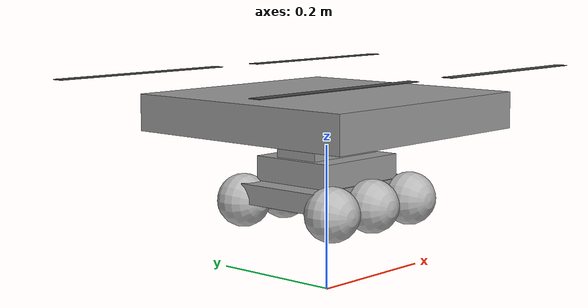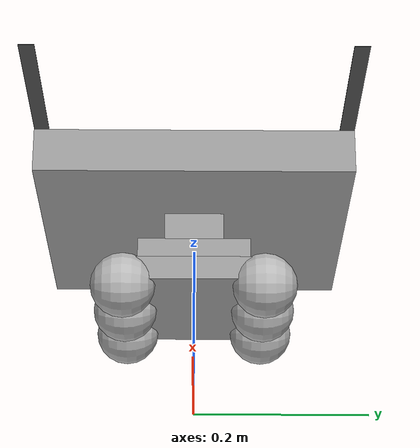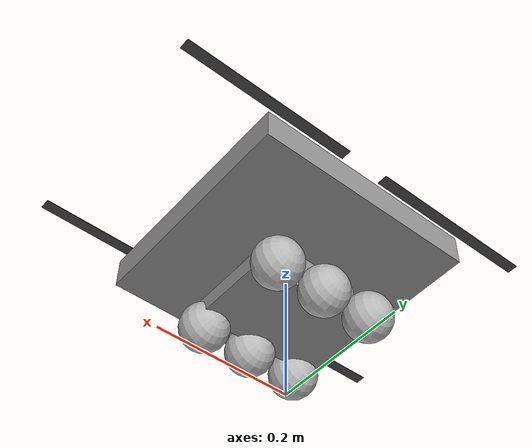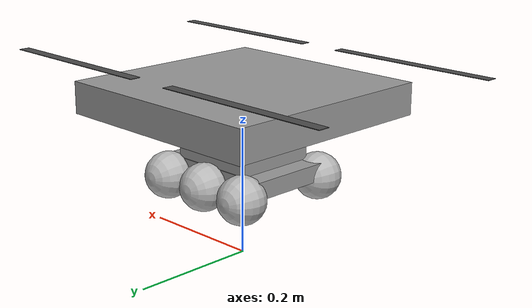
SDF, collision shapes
<?xml version="1.0" encoding="UTF-8"?>
<sdf version='1.9'>
  <model name='x500_base_custom'>

    <pose>0 0 .24 0 0 0</pose>
    <self_collide>false</self_collide>
    <static>false</static>

    <link name="base_link">
      <inertial>
        <mass>2.0</mass>
        <inertia>
          <ixx>0.02166666666666667</ixx>
          <ixy>0</ixy>
          <ixz>0</ixz>
          <iyy>0.02166666666666667</iyy>
          <iyz>0</iyz>
          <izz>0.04000000000000001</izz>
        </inertia>
      </inertial>
      <gravity>true</gravity>
      <velocity_decay />
      <!-- assembly STL visual-->
      <visual name="base_link_visual">
        <!-- edit here - stl position -->
        <pose> -0.3 0.3 -0.15 0 0 -1.570796327</pose>
        <geometry>
          <mesh>
            <scale>1 1 1</scale>
            <!-- edit here - add model stl/dae file -->
            <uri>model://x500_base_custom/meshes/Holybro_X500_V4.STL</uri>
          </mesh>
        </geometry>
        <material>
          <script>
            <uri>file://media/materials/scripts/gazebo.material</uri>
            <name>Gazebo/Grey</name>
          </script>
        </material>
      </visual>
      <!-- motor visual-->
      <visual name="5010_motor_base_0">
        <pose>0.174 0.174 .032 0 0 -.45</pose>
        <geometry>
          <mesh>
            <scale>1 1 1</scale>
            <uri>model://x500_base_custom/meshes/5010Base.dae</uri>
          </mesh>
        </geometry>
      </visual>
      <visual name="5010_motor_base_1">
        <pose>-0.174 0.174 .032 0 0 -.45</pose>
        <geometry>
          <mesh>
            <scale>1 1 1</scale>
            <uri>model://x500_base_custom/meshes/5010Base.dae</uri>
          </mesh>
        </geometry>
      </visual>
      <visual name="5010_motor_base_2">
        <pose>0.174 -0.174 .032 0 0 -.45</pose>
        <geometry>
          <mesh>
            <scale>1 1 1</scale>
            <uri>model://x500_base_custom/meshes/5010Base.dae</uri>
          </mesh>
        </geometry>
      </visual>
      <visual name="5010_motor_base_3">
        <pose>-0.174 -0.174 .032 0 0 -.45</pose>
        <geometry>
          <mesh>
            <scale>1 1 1</scale>
            <uri>model://x500_base_custom/meshes/5010Base.dae</uri>
          </mesh>
        </geometry>
      </visual>
      <!-- X500 senser parts visual-->
      <visual name="NXP_FMUK66_FRONT">
        <pose>0.047 .001 .043 1 0 1.57</pose>
        <cast_shadows>false</cast_shadows>
        <geometry>
          <plane>
            <normal>0 0 1</normal>
            <size>.013 .007</size>
          </plane>
        </geometry>
        <material>
          <diffuse>1.0 1.0 1.0</diffuse>
          <specular>1.0 1.0 1.0</specular>
          <pbr>
            <metal>
              <albedo_map>model://x500_base_custom/materials/textures/nxp.png</albedo_map>
            </metal>
          </pbr>
        </material>
      </visual>
      <visual name="NXP_FMUK66_TOP">
        <pose>-0.023 0 .0515 0 0 -1.57</pose>
        <cast_shadows>false</cast_shadows>
        <geometry>
          <plane>
            <normal>0 0 1</normal>
            <size>.013 .007</size>
          </plane>
        </geometry>
        <material>
          <diffuse>1.0 1.0 1.0</diffuse>
          <specular>1.0 1.0 1.0</specular>
          <pbr>
            <metal>
              <albedo_map>model://x500_base_custom/materials/textures/nxp.png</albedo_map>
            </metal>
          </pbr>
        </material>
      </visual>
      <visual name="RDDRONE_FMUK66_TOP">
        <pose>-.03 0 .0515 0 0 -1.57</pose>
        <cast_shadows>false</cast_shadows>
        <geometry>
          <plane>
            <normal>0 0 1</normal>
            <size>.032 .0034</size>
          </plane>
        </geometry>
        <material>
          <diffuse>1.0 1.0 1.0</diffuse>
          <specular>1.0 1.0 1.0</specular>
          <pbr>
            <metal>
              <albedo_map>model://x500_base_custom/materials/textures/rd.png</albedo_map>
            </metal>
          </pbr>
        </material>
      </visual>
      <!-- X500 top box -->
      <collision name="base_link_collision_0">
        <pose>0 0 .007 0 0 0</pose>
        <geometry>
          <box>
            <size>0.35355339059327373 0.35355339059327373 0.05</size>
          </box>
        </geometry>
        <surface>
          <contact>
            <ode>
              <min_depth>0.001</min_depth>
              <max_vel>0</max_vel>
            </ode>
          </contact>
          <friction>
            <ode />
          </friction>
        </surface>
      </collision>
      <!-- electric box-->
      <collision name="base_link_collision_1">
          <pose>0 0 -0.03485 0 0 0</pose>
          <geometry>
            <box>
              <size>0.125 0.068 0.035</size>
            </box>
          </geometry>
          <surface>
            <contact>
              <ode>
                <min_depth>0.001</min_depth>
                <max_vel>0</max_vel>
              </ode>
            </contact>
            <friction>
              <ode />
            </friction>
          </surface>
        </collision>
      <!-- battery box-->
      <collision name="base_link_collision_2">
        <pose>0 0 -0.06920 0 0 0</pose>
        <geometry>
          <box>
            <size>0.14 0.129 0.0337</size>
          </box>
        </geometry>
        <surface>
          <contact>
            <ode>
              <min_depth>0.001</min_depth>
              <max_vel>0</max_vel>
            </ode>
          </contact>
          <friction>
            <ode />
          </friction>
        </surface>
      </collision>
      <!-- whell base -->
      <collision name="base_link_collision_3">
        <pose>0 0 -0.1002 0 0 0</pose>
        <geometry>
          <box>
            <size>0.2 0.13 0.027</size>
          </box>
        </geometry>
        <surface>
          <contact>
            <ode>
              <min_depth>0.001</min_depth>
              <max_vel>0</max_vel>
            </ode>
          </contact>
          <friction>
            <ode />
          </friction>
        </surface>
      </collision>

      <!-- Standart Px4 Sensors-->
      <sensor name="air_pressure_sensor" type="air_pressure">
        <gz_frame_id>base_link</gz_frame_id>
        <always_on>1</always_on>
        <update_rate>50</update_rate>
        <air_pressure>
          <!-- Noise modeled after BMP390 -->
          <pressure>
            <noise type="gaussian">
              <mean>0</mean>
              <stddev>3</stddev>
            </noise>
          </pressure>
        </air_pressure>
      </sensor>
      <sensor name="magnetometer_sensor" type="magnetometer">
        <gz_frame_id>base_link</gz_frame_id>
        <always_on>1</always_on>
        <update_rate>100</update_rate>
        <magnetometer>
          <!-- TODO: update to fix units and coordinate system when we move past Harmonic -->
          <!-- See https://github.com/gazebosim/gz-sim/pull/2460 -->
          <!-- 3mgauss RMS: NOTE: noise is in tesla but sensor reports data in gauss -->
          <!-- Noise modeled after IIS2MDC -->
          <x>
            <noise type="gaussian">
              <stddev>0.0001</stddev>
            </noise>
          </x>
          <y>
            <noise type="gaussian">
              <stddev>0.0001</stddev>
            </noise>
          </y>
          <z>
            <noise type="gaussian">
              <stddev>0.0001</stddev>
            </noise>
          </z>
        </magnetometer>
      </sensor>
      <sensor name="imu_sensor" type="imu">
        <gz_frame_id>base_link</gz_frame_id>
        <always_on>1</always_on>
        <update_rate>250</update_rate>
        <imu>
          <angular_velocity>
            <!-- Noise modeled after IIM42653 -->
            <!-- 0.05 deg/s converted to rad/s -->
            <x>
              <noise type="gaussian">
                <mean>0.0</mean>
                <stddev>0.0008726646</stddev>
              </noise>
            </x>
            <y>
              <noise type="gaussian">
                <mean>0.0</mean>
                <stddev>0.0008726646</stddev>
              </noise>
            </y>
            <z>
              <noise type="gaussian">
                <mean>0.0</mean>
                <stddev>0.0008726646</stddev>
              </noise>
            </z>
          </angular_velocity>
          <linear_acceleration>
            <!-- Noise modeled after IIM42653 -->
            <!-- X & Y axis: 0.65 mg-rms converted to m/ss -->
            <x>
              <noise type="gaussian">
                <mean>0.0</mean>
                <stddev>0.00637</stddev>
              </noise>
            </x>
            <y>
              <noise type="gaussian">
                <mean>0.0</mean>
                <stddev>0.00637</stddev>
              </noise>
            </y>
            <!-- Z axis: 0.70 mg-rms converted to m/ss-->
            <z>
              <noise type="gaussian">
                <mean>0.0</mean>
                <stddev>0.00686</stddev>
              </noise>
            </z>
          </linear_acceleration>
        </imu>
      </sensor>
      <sensor name="navsat_sensor" type="navsat">
        <gz_frame_id>base_link</gz_frame_id>
        <always_on>1</always_on>
        <update_rate>30</update_rate>
      </sensor>
    </link>

    <!-- Px4 Rotors-->

    <link name="rotor_0">
      <gravity>true</gravity>
      <self_collide>false</self_collide>
      <velocity_decay />
      <pose>0.174 -0.174 0.06 0 0 0</pose>
      <inertial>
        <mass>0.016076923076923075</mass>
        <inertia>
          <ixx>3.8464910483993325e-07</ixx>
          <iyy>2.6115851691700804e-05</iyy>
          <izz>2.649858234714004e-05</izz>
        </inertia>
      </inertial>
      <visual name="rotor_0_visual">
        <pose>-0.022 -0.14638461538461536 -0.016 0 0 0</pose>
        <geometry>
          <mesh>
            <scale>0.8461538461538461 0.8461538461538461 0.8461538461538461</scale>
            <uri>model://x500_base_custom/meshes/1345_prop_ccw.stl</uri>
          </mesh>
        </geometry>
        <material>
          <script>
            <name>Gazebo/DarkGrey</name>
            <uri>file://media/materials/scripts/gazebo.material</uri>
          </script>
        </material>
      </visual>
      <visual name="rotor_0_visual_motor_bell">
        <pose>0 0 -.032 0 0 0</pose>
        <geometry>
          <mesh>
            <scale>1 1 1</scale>
            <uri>model://x500_base_custom/meshes/5010Bell.dae</uri>
          </mesh>
        </geometry>
      </visual>
      <collision name="rotor_0_collision">
        <pose>0 0 0 0 0 0 </pose>
        <geometry>
          <box>
            <size>0.2792307692307692 0.016923076923076923 0.0008461538461538462</size>
          </box>
        </geometry>
        <surface>
          <contact>
            <ode>
              <min_depth>0.001</min_depth>
              <max_vel>0</max_vel>
            </ode>
          </contact>
          <friction>
            <ode />
          </friction>
        </surface>
      </collision>
    </link>
    <joint name="rotor_0_joint" type="revolute">
      <parent>base_link</parent>
      <child>rotor_0</child>
      <axis>
        <xyz>0 0 1</xyz>
        <limit>
          <lower>-1e+16</lower>
          <upper>1e+16</upper>
        </limit>
        <dynamics>
          <spring_reference>0</spring_reference>
          <spring_stiffness>0</spring_stiffness>
        </dynamics>
      </axis>
    </joint>
    <link name="rotor_1">
      <gravity>true</gravity>
      <self_collide>false</self_collide>
      <velocity_decay />
      <pose>-0.174 0.174 0.06 0 0 0</pose>
      <inertial>
        <mass>0.016076923076923075</mass>
        <inertia>
          <ixx>3.8464910483993325e-07</ixx>
          <iyy>2.6115851691700804e-05</iyy>
          <izz>2.649858234714004e-05</izz>
        </inertia>
      </inertial>
      <visual name="rotor_1_visual">
        <pose>-0.022 -0.14638461538461536 -0.016 0 0 0</pose>
        <geometry>
          <mesh>
            <scale>0.8461538461538461 0.8461538461538461 0.8461538461538461</scale>
            <uri>model://x500_base_custom/meshes/1345_prop_ccw.stl</uri>
          </mesh>
        </geometry>
        <material>
          <script>
            <name>Gazebo/DarkGrey</name>
            <uri>file://media/materials/scripts/gazebo.material</uri>
          </script>
        </material>
      </visual>
      <visual name="rotor_1_visual_motor_top">
        <pose>0 0 -.032 0 0 0</pose>
        <geometry>
          <mesh>
            <scale>1 1 1</scale>
            <uri>model://x500_base_custom/meshes/5010Bell.dae</uri>
          </mesh>
        </geometry>
      </visual>
      <collision name="rotor_1_collision">
        <pose>0 0 0 0 0 0 </pose>
        <geometry>
          <box>
            <size>0.2792307692307692 0.016923076923076923 0.0008461538461538462</size>
          </box>
        </geometry>
        <surface>
          <contact>
            <ode>
              <min_depth>0.001</min_depth>
              <max_vel>0</max_vel>
            </ode>
          </contact>
          <friction>
            <ode />
          </friction>
        </surface>
      </collision>
    </link>
    <joint name="rotor_1_joint" type="revolute">
      <parent>base_link</parent>
      <child>rotor_1</child>
      <axis>
        <xyz>0 0 1</xyz>
        <limit>
          <lower>-1e+16</lower>
          <upper>1e+16</upper>
        </limit>
        <dynamics>
          <spring_reference>0</spring_reference>
          <spring_stiffness>0</spring_stiffness>
        </dynamics>
      </axis>
    </joint>
    <link name="rotor_2">
      <gravity>true</gravity>
      <self_collide>false</self_collide>
      <velocity_decay />
      <pose>0.174 0.174 0.06 0 0 0</pose>
      <inertial>
        <mass>0.016076923076923075</mass>
        <inertia>
          <ixx>3.8464910483993325e-07</ixx>
          <iyy>2.6115851691700804e-05</iyy>
          <izz>2.649858234714004e-05</izz>
        </inertia>
      </inertial>
      <visual name="rotor_2_visual">
        <pose>-0.022 -0.14638461538461536 -0.016 0 0 0</pose>
        <geometry>
          <mesh>
            <scale>0.8461538461538461 0.8461538461538461 0.8461538461538461</scale>
            <uri>model://x500_base_custom/meshes/1345_prop_cw.stl</uri>
          </mesh>
        </geometry>
        <material>
          <script>
            <name>Gazebo/DarkGrey</name>
            <uri>file://media/materials/scripts/gazebo.material</uri>
          </script>
        </material>
      </visual>
      <visual name="rotor_2_visual_motor_top">
        <pose>0 0 -.032 0 0 0</pose>
        <geometry>
          <mesh>
            <scale>1 1 1</scale>
            <uri>model://x500_base_custom/meshes/5010Bell.dae</uri>
          </mesh>
        </geometry>
      </visual>
      <collision name="rotor_2_collision">
        <pose>0 0 0 0 0 0 </pose>
        <geometry>
          <box>
            <size>0.2792307692307692 0.016923076923076923 0.0008461538461538462</size>
          </box>
        </geometry>
        <surface>
          <contact>
            <ode>
              <min_depth>0.001</min_depth>
              <max_vel>0</max_vel>
            </ode>
          </contact>
          <friction>
            <ode />
          </friction>
        </surface>
      </collision>
    </link>
    <joint name="rotor_2_joint" type="revolute">
      <parent>base_link</parent>
      <child>rotor_2</child>
      <axis>
        <xyz>0 0 1</xyz>
        <limit>
          <lower>-1e+16</lower>
          <upper>1e+16</upper>
        </limit>
        <dynamics>
          <spring_reference>0</spring_reference>
          <spring_stiffness>0</spring_stiffness>
        </dynamics>
      </axis>
    </joint>
    <link name="rotor_3">
      <gravity>true</gravity>
      <self_collide>false</self_collide>
      <velocity_decay />
      <pose>-0.174 -0.174 0.06 0 0 0</pose>
      <inertial>
        <mass>0.016076923076923075</mass>
        <inertia>
          <ixx>3.8464910483993325e-07</ixx>
          <iyy>2.6115851691700804e-05</iyy>
          <izz>2.649858234714004e-05</izz>
        </inertia>
      </inertial>
      <visual name="rotor_3_visual">
        <pose>-0.022 -0.14638461538461536 -0.016 0 0 0</pose>
        <geometry>
          <mesh>
            <scale>0.8461538461538461 0.8461538461538461 0.8461538461538461</scale>
            <uri>model://x500_base_custom/meshes/1345_prop_cw.stl</uri>
          </mesh>
        </geometry>
        <material>
          <script>
            <name>Gazebo/DarkGrey</name>
            <uri>file://media/materials/scripts/gazebo.material</uri>
          </script>
        </material>
      </visual>
      <visual name="rotor_3_visual_motor_top">
        <pose>0 0 -.032 0 0 0</pose>
        <geometry>
          <mesh>
            <scale>1 1 1</scale>
            <uri>model://x500_base_custom/meshes/5010Bell.dae</uri>
          </mesh>
        </geometry>
      </visual>
      <collision name="rotor_3_collision">
        <pose>0 0 0 0 0 0 </pose>
        <geometry>
          <box>
            <size>0.2792307692307692 0.016923076923076923 0.0008461538461538462</size>
          </box>
        </geometry>
        <surface>
          <contact>
            <ode>
              <min_depth>0.001</min_depth>
              <max_vel>0</max_vel>
            </ode>
          </contact>
          <friction>
            <ode />
          </friction>
        </surface>
      </collision>
    </link>
    <joint name="rotor_3_joint" type="revolute">
      <parent>base_link</parent>
      <child>rotor_3</child>
      <axis>
        <xyz>0 0 1</xyz>
        <limit>
          <lower>-1e+16</lower>
          <upper>1e+16</upper>
        </limit>
        <dynamics>
          <spring_reference>0</spring_reference>
          <spring_stiffness>0</spring_stiffness>
        </dynamics>
      </axis>
    </joint>

    <!-- whell link&joint-->
    <link name="wheel_L_front_link">
      <pose>0.08 0.08 -0.1137 1.570796327 0 0</pose>
      <inertial>
        <mass>0.01</mass>
        <inertia>
          <ixx>0.000001</ixx><ixy>0</ixy><ixz>0</ixz>
          <iyy>0.000001</iyy><iyz>0</iyz><izz>0.000001</izz>
        </inertia>
      </inertial>
      <collision name="collision">
        <geometry><sphere><radius>0.036615</radius></sphere></geometry>
        <surface>
          <friction><ode><mu>1000000000000.0</mu><mu2>1000000000000.0</mu2><fdir1>1 0 0</fdir1></ode></friction>
          <contact><ode><kp>1000000000000.0</kp><kd>10.0</kd><min_depth>0.001</min_depth><max_vel>0.1</max_vel></ode></contact>
        </surface>
      </collision>
    </link>
    <joint name="wheel_L_front_joint" type="revolute">
      <parent>base_link</parent>
      <child>wheel_L_front_link</child>
      <axis>
        <xyz>0 0 -1</xyz>
        <limit>
          <lower>-1e16</lower>
          <upper>1e16</upper>
        </limit>
      </axis>
      <gz_ros2_control>
        <joint_name>wheel_L_front_joint</joint_name>
        <command_interface name="velocity"/>
        <state_interface name="position"/>
        <state_interface name="velocity"/>
      </gz_ros2_control>
    </joint>
    <link name="wheel_L_mid_link">
      <pose>0 0.08 -0.1137 1.570796327 0 0</pose>
      <inertial>
        <mass>0.01</mass>
        <inertia><ixx>0.000001</ixx><iyy>0.000001</iyy><izz>0.000001</izz></inertia>
      </inertial>
      <collision name="collision">
        <geometry><sphere><radius>0.036615</radius></sphere></geometry>
        <surface>
          <friction><ode><mu>1000000000000.0</mu><mu2>1000000000000.0</mu2></ode></friction>
          <contact><ode><kp>1000000000000.0</kp><kd>10.0</kd></ode></contact>
        </surface>
      </collision>
    </link>
    <joint name="wheel_L_mid_joint" type="revolute">
      <parent>base_link</parent>
      <child>wheel_L_mid_link</child>
      <axis>
        <xyz>0 0 -1</xyz>
        <limit>
          <lower>-1e16</lower>
          <upper>1e16</upper>
        </limit>
      </axis>
      <gz_ros2_control>
        <joint_name>wheel_L_mid_joint</joint_name>
        <command_interface name="velocity"/>
        <state_interface name="position"/>
        <state_interface name="velocity"/>
      </gz_ros2_control>
    </joint>
    <link name="wheel_L_rear_link">
      <pose>-0.08 0.08 -0.1137 1.570796327 0 0</pose>
      <inertial>
        <mass>0.01</mass>
        <inertia><ixx>0.000001</ixx><iyy>0.000001</iyy><izz>0.000001</izz></inertia>
      </inertial>
      <collision name="collision">
        <geometry><sphere><radius>0.036615</radius></sphere></geometry>
        <surface>
          <friction><ode><mu>1000000000000.0</mu><mu2>1000000000000.0</mu2></ode></friction>
          <contact><ode><kp>1000000000000.0</kp><kd>10.0</kd></ode></contact>
        </surface>
      </collision>
    </link>
    <joint name="wheel_L_rear_joint" type="revolute">
      <parent>base_link</parent>
      <child>wheel_L_rear_link</child>
      <axis>
        <xyz>0 0 -1</xyz>
        <limit>
          <lower>-1e16</lower>
          <upper>1e16</upper>
        </limit>
      </axis>
      <gz_ros2_control>
        <joint_name>wheel_L_rear_joint</joint_name>
        <command_interface name="velocity"/>
        <state_interface name="position"/>
        <state_interface name="velocity"/>
      </gz_ros2_control>
    </joint>
    <link name="wheel_R_front_link">
      <pose>0.08 -0.08 -0.1137 1.570796327 0 0</pose>
      <inertial>
        <mass>0.01</mass>
        <inertia><ixx>0.000001</ixx><iyy>0.000001</iyy><izz>0.000001</izz></inertia>
      </inertial>
      <collision name="collision">
        <geometry><sphere><radius>0.036615</radius></sphere></geometry>
        <surface>
          <friction><ode><mu>1000000000000.0</mu><mu2>1000000000000.0</mu2></ode></friction>
          <contact><ode><kp>1000000000000.0</kp><kd>10.0</kd></ode></contact>
        </surface>
      </collision>
    </link>
    <joint name="wheel_R_front_joint" type="revolute">
      <parent>base_link</parent>
      <child>wheel_R_front_link</child>
      <axis>
        <xyz>0 0 -1</xyz>
        <limit>
          <lower>-1e16</lower>
          <upper>1e16</upper>
        </limit>
      </axis>
      <gz_ros2_control>
        <joint_name>wheel_R_front_joint</joint_name>
        <command_interface name="velocity"/>
        <state_interface name="position"/>
        <state_interface name="velocity"/>
      </gz_ros2_control>
    </joint>
    <link name="wheel_R_mid_link">
      <pose>0 -0.08 -0.1137 1.570796327 0 0</pose>
      <inertial>
        <mass>0.01</mass>
        <inertia><ixx>0.000001</ixx><iyy>0.000001</iyy><izz>0.000001</izz></inertia>
      </inertial>
      <collision name="collision">
        <geometry><sphere><radius>0.036615</radius></sphere></geometry>
        <surface>
          <friction><ode><mu>1000000000000.0</mu><mu2>1000000000000.0</mu2></ode></friction>
          <contact><ode><kp>1000000000000.0</kp><kd>10.0</kd></ode></contact>
        </surface>
      </collision>
    </link>
    <joint name="wheel_R_mid_joint" type="revolute">
      <parent>base_link</parent>
      <child>wheel_R_mid_link</child>
      <axis>
        <xyz>0 0 -1</xyz>
        <limit>
          <lower>-1e16</lower>
          <upper>1e16</upper>
        </limit>
      </axis>
      <gz_ros2_control>
        <joint_name>wheel_R_mid_joint</joint_name>
        <command_interface name="velocity"/>
        <state_interface name="position"/>
        <state_interface name="velocity"/>
      </gz_ros2_control>
    </joint>
    <link name="wheel_R_rear_link">
      <pose>-0.08 -0.08 -0.1137 1.570796327 0 0</pose>
      <inertial>
        <mass>0.01</mass>
        <inertia><ixx>0.000001</ixx><iyy>0.000001</iyy><izz>0.000001</izz></inertia>
      </inertial>
      <collision name="collision">
        <geometry><sphere><radius>0.036615</radius></sphere></geometry>
        <surface>
          <friction><ode><mu>1000000000000.0</mu><mu2>1000000000000.0</mu2></ode></friction>
          <contact><ode><kp>1000000000000.0</kp><kd>10.0</kd></ode></contact>
        </surface>
      </collision>
    </link>
    <joint name="wheel_R_rear_joint" type="revolute">
      <parent>base_link</parent>
      <child>wheel_R_rear_link</child>
      <axis>
        <xyz>0 0 -1</xyz>
        <limit>
          <lower>-1e16</lower>
          <upper>1e16</upper>
        </limit>
      </axis>
      <gz_ros2_control>
        <joint_name>wheel_R_rear_joint</joint_name>
        <command_interface name="velocity"/>
        <state_interface name="position"/>
        <state_interface name="velocity"/>
      </gz_ros2_control>
    </joint>

    <!-- ros 2 control whell controlller-->
    <plugin name='gz_ros2_control::GazeboSimROS2ControlPlugin' filename='gz_ros2_control-system'>
      <parameters>/home/netanel/workspaces/AirGroundRobo/install/airgroundbot_controller/share/airgroundbot_controller/config/groundbot_controllers.yaml</parameters>
      <ros>
        <namespace>/</namespace>
        <use_sim_time>true</use_sim_time>
      </ros>
    </plugin>

  </model>
</sdf>
